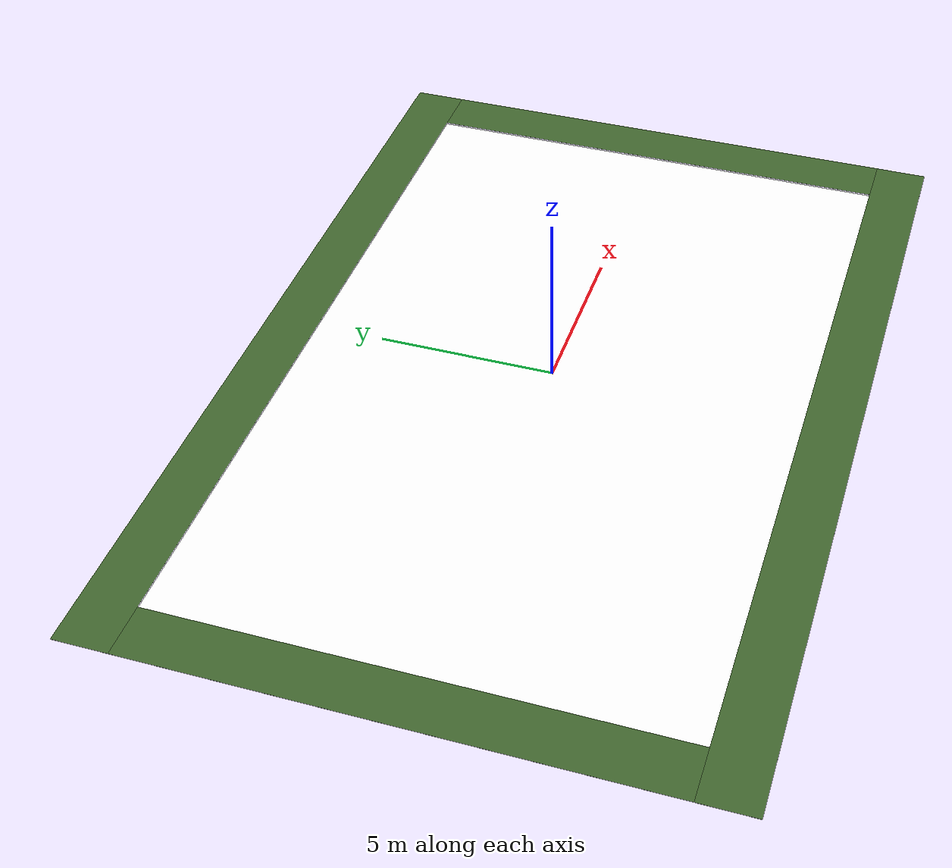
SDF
<?xml version="1.0"?>
<!-- XML 声明：文件编码与基础格式，SDF 文件标准开头 -->
<!-- SDF 根标签，version 指定SDF协议版本，当前使用 1.10 适配 Gazebo Harmonic -->
<sdf version="1.11">

  <!-- 定义一个独立模型，模型名称：RoboCup15_MSL_Field（RoboCup MSL 比赛场地） -->
  <model name="RoboCup15_MSL_Field">

    <!-- static：静态模型开关 true=静态物体，物理引擎不会计算位移/受力，不会被碰撞推动，场地固定不动 -->
    <static>true</static>

    <!-- link：连杆，SDF 中物理实体的基本单元
         整个场地合并为单个连杆，name 为连杆标识 -->
    <link name="chassis">

      <!-- pose：连杆位姿，格式：X Y Z Roll Pitch Yaw
           单位：米(m)、弧度(rad) Z=0.01：将场地整体抬高0.01m，避免与默认地面重叠产生渲染/物理异常 -->
      <pose> 0 0 0.01 0 0 0 </pose>

      <!-- collision：碰撞体，仅负责物理碰撞、摩擦、接触检测，无视觉效果 -->
      <collision name="collision">
        <!-- geometry：几何形状容器，定义碰撞体外形 -->
        <geometry>
          <!-- plane：无限平面几何体，常用于地面、平台
               物理特性：逻辑上无限大，size 仅辅助参考 -->
          <plane>
            <!-- normal：平面法向量，决定平面朝向  X Y Z
                 0 0 1 → 法向量沿Z轴向上，代表水平地面 -->
            <normal>0 0 1</normal>
            <!-- size：平面视觉尺寸  宽度 长度，单位m
                 此处定义主场地可视范围 22m × 14m -->
            <size>22 14</size>
          </plane>
        </geometry>

        <!-- surface：物体表面物理属性容器，配置摩擦、弹力等接触特性 -->
        <surface>
          <!-- friction：摩擦力配置节点 -->
          <friction>
            <!-- ode：指定使用 ODE 物理引擎（Gazebo 默认物理引擎）的摩擦参数 -->
            <ode>
              <!-- mu：主方向摩擦系数，数值越大摩擦力越强，越不容易打滑 -->
              <mu>100</mu>
              <!-- mu2：次方向摩擦系数，垂直于主摩擦方向，一般取值为 mu 的 1/2 -->
              <mu2>50</mu2>
            </ode>
          </friction>
        </surface>
      </collision>

      <!-- visual：视觉模型，仅负责画面渲染，不参与物理碰撞计算 -->
      <visual name="carpet">        <!-- 主场地地毯视觉层，name为视觉体标识 -->
        <!-- cast_shadows：是否投射阴影 false=关闭阴影，地面/场地通常关闭，提升渲染效率、画面整洁 -->
        <cast_shadows>false</cast_shadows>

        <!-- geometry：视觉几何体，外形和下方碰撞体保持一致 -->
        <geometry>
          <plane>
            <normal>0 0 1</normal>            <!-- 平面朝上，水平放置 -->
            <size>22 14</size>            <!-- 可视尺寸与碰撞体匹配：22m × 14m -->
          </plane>
        </geometry>

        <!-- material：材质配置，控制颜色、光照、贴图、反光等视觉效果 -->
        <material>
          <!-- ambient：环境光颜色，格式 R G B A (红 绿 蓝 透明度)，取值 0~1
               物体在阴影区域呈现的颜色 -->
          <ambient>1.0 1.0 1.0 1.0</ambient>
          <!-- diffuse：漫反射颜色，正常光照下物体主体颜色 -->
          <diffuse>1.0 1.0 1.0 1.0</diffuse>
          <!-- specular：高光反射，格式 R G B A 高光强度系数
               最后一个数值为高光范围，数值越小光斑越集中 -->
          <specular>0.2 0.2 0.2 1.0</specular>

          <!-- pbr：基于物理的渲染（PBR），现代真实质感渲染方案 -->
          <pbr>
            <!-- metal：金属/非金属材质分支，用于区分材质类型 -->
            <metal>
              <!-- albedo_map：基础颜色贴图路径，加载外部图片作为表面纹理 -->
              <albedo_map>./materials/textures/RoboCup15_MSL_Field_Map.jpg</albedo_map>
              <!-- roughness：粗糙度，取值 0~1 1=完全粗糙不反光，0=镜面光滑；地毯设为0.9符合真实质感 -->
              <roughness>0.9</roughness>
              <!-- metalness：金属度，取值 0~1 0=非金属（地毯/布料/地面），1=纯金属 -->
              <metalness>0.0</metalness>
            </metal>
          </pbr>
        </material>
      </visual>

      <!-- 上方边界视觉层：base1，场地顶部绿色边框 -->
      <visual name="base1">
        <!-- pose：边界条位置，Y=7.75 放置在主场地最上方，高度与主场地一致 -->
        <pose>0 7.75 0.01 0 0 0</pose>
        <cast_shadows>false</cast_shadows>        <!-- 关闭阴影 -->
        <geometry>
          <plane>
            <normal>0 0 1</normal>
            <size>25.0 1.5</size>            <!-- 尺寸：长25m、宽1.5m 的长条边界 -->
          </plane>
        </geometry>
        <material>
          <ambient>0.2578 0.4023 0.1836 1</ambient>          <!-- 暗绿色环境色 -->
          <diffuse>0.2578 0.4023 0.1836 1</diffuse>          <!-- 暗绿色主体色 -->
          <specular>0.1 0.1 0.1 1</specular>          <!-- 低高光，几乎不反光 -->
          <pbr>
            <metal>
              <roughness>0.9</roughness>              <!-- 高粗糙度，哑光效果 -->
              <metalness>0.0</metalness>              <!-- 非金属材质 -->
            </metal>
          </pbr>
        </material>
      </visual>

      <!-- 下方边界视觉层：base2，场地底部绿色边框 -->
      <visual name="base2">
        <!-- pose：Y=-7.75 放置在主场地最下方 -->
        <pose>0 -7.75 0.01 0 0 0</pose>
        <cast_shadows>false</cast_shadows>
        <geometry>
          <plane>
            <normal>0 0 1</normal>
            <size>25.0 1.5</size>
          </plane>
        </geometry>
        <material>
          <ambient>0.2578 0.4023 0.1836 1</ambient>
          <diffuse>0.2578 0.4023 0.1836 1</diffuse>
          <specular>0.1 0.1 0.1 1</specular>
          <pbr>
            <metal>
              <roughness>0.9</roughness>
              <metalness>0.0</metalness>
            </metal>
          </pbr>
        </material>
      </visual>

      <!-- 右侧边界视觉层：base3，场地右侧绿色边框 -->
      <visual name="base3">
        <!-- pose：X=11.75 放置在主场地最右侧 -->
        <pose>11.75 0 0.01 0 0 0</pose>
        <cast_shadows>false</cast_shadows>
        <geometry>
          <plane>
            <normal>0 0 1</normal>
            <size>1.5 14.0</size>            <!-- 竖条边界：宽1.5m、高14m -->
          </plane>
        </geometry>
        <material>
          <ambient>0.2578 0.4023 0.1836 1</ambient>
          <diffuse>0.2578 0.4023 0.1836 1</diffuse>
          <specular>0.1 0.1 0.1 1</specular>
          <pbr>
            <metal>
              <roughness>0.9</roughness>
              <metalness>0.0</metalness>
            </metal>
          </pbr>
        </material>
      </visual>

      <!-- 左侧边界视觉层：base4，场地左侧绿色边框 -->
      <visual name="base4">
        <!-- pose：X=-11.75 放置在主场地最左侧 -->
        <pose>-11.75 0 0.01 0 0 0</pose>
        <cast_shadows>false</cast_shadows>
        <geometry>
          <plane>
            <normal>0 0 1</normal>
            <size>1.5 14.0</size>
          </plane>
        </geometry>
        <material>
          <ambient>0.2578 0.4023 0.1836 1</ambient>
          <diffuse>0.2578 0.4023 0.1836 1</diffuse>
          <specular>0.1 0.1 0.1 1</specular>
          <pbr>
            <metal>
              <roughness>0.9</roughness>
              <metalness>0.0</metalness>
            </metal>
          </pbr>
        </material>
      </visual>

    </link>    <!--
    结束场地连杆 -->
  </model>  <!--
  结束场地模型 -->
</sdf><!--
结束SDF根节点 -->
